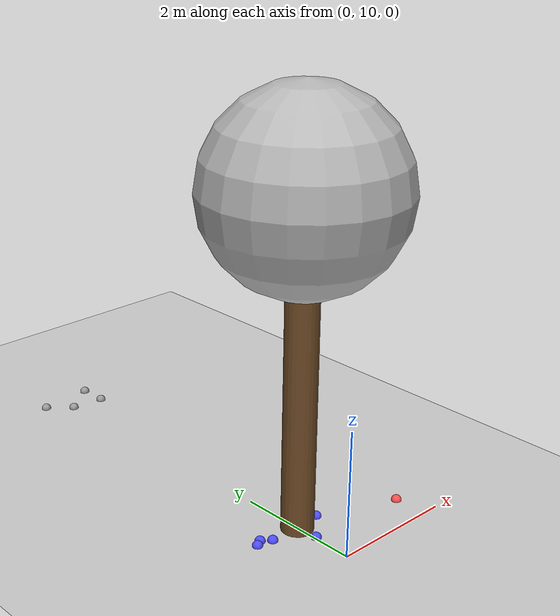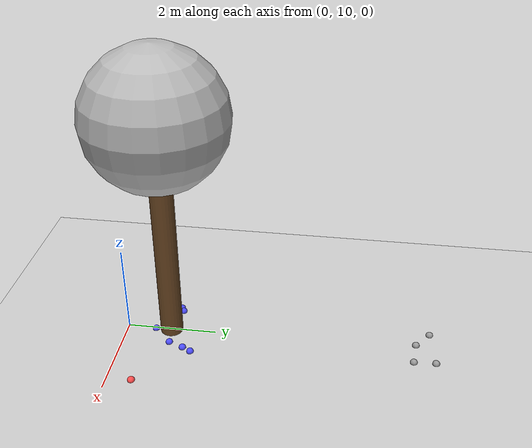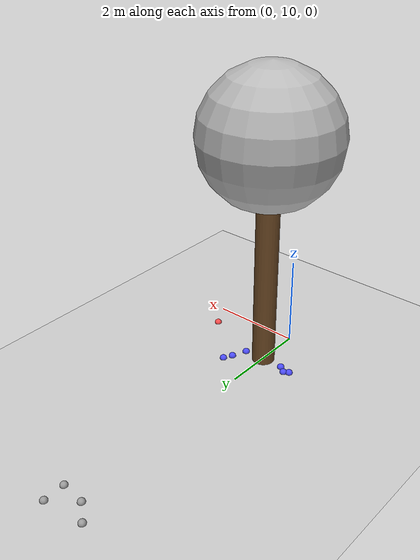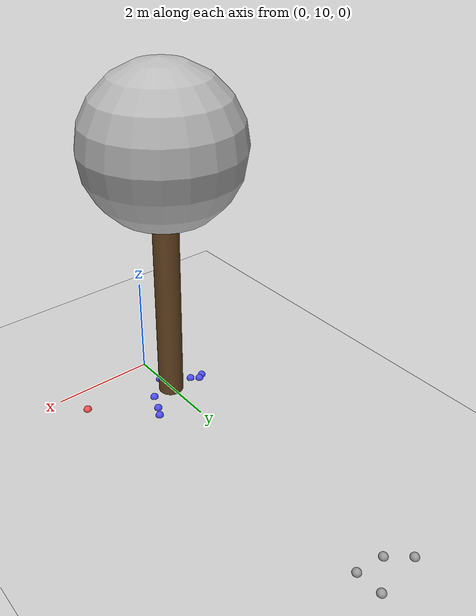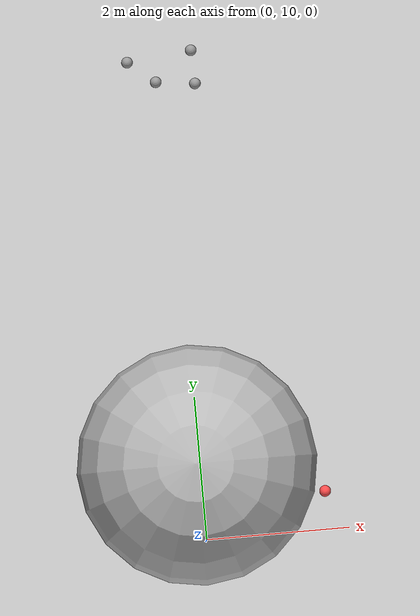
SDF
<sdf version="1.7">
 <world name="default">
  <model name="ground_plane">
   <static>1</static>
   <link name="link">
    <collision name="collision">
     <geometry><plane><normal>0 0 1</normal><size>100 100</size></plane></geometry>
     <surface>
      <contact><collide_bitmask>65535</collide_bitmask></contact>
      <friction><ode><mu>100</mu><mu2>50</mu2></ode></friction>
     </surface>
    </collision>
    <visual name="visual">
     <cast_shadows>0</cast_shadows>
     <geometry><plane><normal>0 0 1</normal><size>100 100</size></plane></geometry>
     <material>
      <script><uri>file://media/materials/scripts/gazebo.material</uri><name>Gazebo/Grey</name></script>
     </material>
    </visual>
   </link>
  </model>
  <model name="tree_simple_65">
   <static>1</static>
   <link name="link">
    <pose>0 0 0.1 0 -0 0</pose>
    <inertial>
     <mass>666</mass>
     <inertia>
      <ixx>0.0861167</ixx>
      <ixy>0</ixy>
      <ixz>0</ixz>
      <iyy>0.0861167</iyy>
      <iyz>0</iyz>
      <izz>0.0861167</izz>
     </inertia>
    </inertial>
    <collision name="collision_trunk">
     <pose>0 0 2 0 -0 0</pose>
     <geometry><cylinder><radius>0.25</radius><length>4</length></cylinder></geometry>
     <surface>
      <contact>
       <poissons_ratio>0.347</poissons_ratio>
       <elastic_modulus>8.8e+09</elastic_modulus>
       <ode><kp>100000</kp><kd>100</kd><max_vel>100</max_vel><min_depth>0.001</min_depth></ode>
      </contact>
      <friction>
       <torsional>
        <coefficient>1</coefficient>
        <use_patch_radius>0</use_patch_radius>
        <surface_radius>0.01</surface_radius>
       </torsional>
      </friction>
     </surface>
    </collision>
    <collision name="collision_treetop">
     <pose>0 0 5.2 0 -0 0</pose>
     <geometry><sphere><radius>1.5</radius></sphere></geometry>
     <surface>
      <contact>
       <poissons_ratio>0.347</poissons_ratio>
       <elastic_modulus>8.8e+09</elastic_modulus>
       <ode><kp>100000</kp><kd>100</kd><max_vel>100</max_vel><min_depth>0.001</min_depth></ode>
      </contact>
      <friction>
       <torsional>
        <coefficient>1</coefficient>
        <use_patch_radius>0</use_patch_radius>
        <surface_radius>0.01</surface_radius>
       </torsional>
      </friction>
     </surface>
    </collision>
    <visual name="trunk">
     <pose>0 0 2 0 -0 0</pose>
     <geometry><cylinder><radius>0.25</radius><length>4</length></cylinder></geometry>
     <material>
      <script>
       <uri>model://tree_simple/scripts</uri>
       <uri>model://tree_simple/materials/textures</uri>
       <name>TreeSimple/Trunk</name>
      </script>
     </material>
    </visual>
    <visual name="treetop">
     <pose>0 0 5.2 0 -0 0</pose>
     <geometry><sphere><radius>1.5</radius></sphere></geometry>
     <material>
      <script>
       <uri>model://tree_simple/scripts</uri>
       <uri>model://tree_simple/materials/textures</uri>
       <name>TreeSimple/Treetop</name>
      </script>
     </material>
    </visual>
   </link>
   <pose>0 11 -0.1 0 -0 0</pose>
  </model>
  <model name="seed_black_41">
   <link name="link">
    <inertial>
     <mass>1</mass>
     <inertia><ixx>0.1</ixx><ixy>0</ixy><ixz>0</ixz><iyy>0.1</iyy><iyz>0</iyz><izz>0.1</izz></inertia>
    </inertial>
    <visual name="visual">
     <geometry><sphere><radius>0.08</radius></sphere></geometry>
     <material>
      <script><name>Gazebo/Grey</name><uri>file://media/materials/scripts/gazebo.material</uri></script>
      <shader type="pixel"><normal_map>__default__</normal_map></shader>
      <ambient>0 0 0 1</ambient>
      <diffuse>0.7 0.7 0.7 1</diffuse>
      <specular>0.01 0.01 0.01 1</specular>
      <emissive>0 0 0 1</emissive>
     </material>
    </visual>
    <collision name="collision">
     <geometry><sphere><radius>0.0005</radius></sphere></geometry>
     <surface>
      <friction>
       <ode><mu>1</mu><mu2>1</mu2><fdir1>0 0 0</fdir1><slip1>0</slip1><slip2>0</slip2></ode>
       <torsional>
        <coefficient>1</coefficient>
        <patch_radius>0</patch_radius>
        <surface_radius>0</surface_radius>
        <use_patch_radius>1</use_patch_radius>
        <ode><slip>0</slip></ode>
       </torsional>
      </friction>
      <bounce><restitution_coefficient>0</restitution_coefficient><threshold>1e+06</threshold></bounce>
      <contact>
       <collide_without_contact>0</collide_without_contact>
       <collide_without_contact_bitmask>1</collide_without_contact_bitmask>
       <collide_bitmask>1</collide_bitmask>
       <ode>
        <soft_cfm>0</soft_cfm>
        <soft_erp>0.2</soft_erp>
        <kp>1e+13</kp>
        <kd>1</kd>
        <max_vel>0.01</max_vel>
        <min_depth>0</min_depth>
       </ode>
       <bullet>
        <split_impulse>1</split_impulse>
        <split_impulse_penetration_threshold>-0.01</split_impulse_penetration_threshold>
        <soft_cfm>0</soft_cfm>
        <soft_erp>0.2</soft_erp>
        <kp>1e+13</kp>
        <kd>1</kd>
       </bullet>
      </contact>
     </surface>
    </collision>
   </link>
   <static>0</static>
   <pose>-0.544174 16.7759 0.0005 0 -0 0</pose>
  </model>
  <model name="seed_black_43">
   <link name="link">
    <inertial>
     <mass>1</mass>
     <inertia><ixx>0.1</ixx><ixy>0</ixy><ixz>0</ixz><iyy>0.1</iyy><iyz>0</iyz><izz>0.1</izz></inertia>
    </inertial>
    <visual name="visual">
     <geometry><sphere><radius>0.08</radius></sphere></geometry>
     <material>
      <script><name>Gazebo/Grey</name><uri>file://media/materials/scripts/gazebo.material</uri></script>
      <shader type="pixel"><normal_map>__default__</normal_map></shader>
      <ambient>0 0 0 1</ambient>
      <diffuse>0.7 0.7 0.7 1</diffuse>
      <specular>0.01 0.01 0.01 1</specular>
      <emissive>0 0 0 1</emissive>
     </material>
    </visual>
    <collision name="collision">
     <geometry><sphere><radius>0.0005</radius></sphere></geometry>
     <surface>
      <friction>
       <ode><mu>1</mu><mu2>1</mu2><fdir1>0 0 0</fdir1><slip1>0</slip1><slip2>0</slip2></ode>
       <torsional>
        <coefficient>1</coefficient>
        <patch_radius>0</patch_radius>
        <surface_radius>0</surface_radius>
        <use_patch_radius>1</use_patch_radius>
        <ode><slip>0</slip></ode>
       </torsional>
      </friction>
      <bounce><restitution_coefficient>0</restitution_coefficient><threshold>1e+06</threshold></bounce>
      <contact>
       <collide_without_contact>0</collide_without_contact>
       <collide_without_contact_bitmask>1</collide_without_contact_bitmask>
       <collide_bitmask>1</collide_bitmask>
       <ode>
        <soft_cfm>0</soft_cfm>
        <soft_erp>0.2</soft_erp>
        <kp>1e+13</kp>
        <kd>1</kd>
        <max_vel>0.01</max_vel>
        <min_depth>0</min_depth>
       </ode>
       <bullet>
        <split_impulse>1</split_impulse>
        <split_impulse_penetration_threshold>-0.01</split_impulse_penetration_threshold>
        <soft_cfm>0</soft_cfm>
        <soft_erp>0.2</soft_erp>
        <kp>1e+13</kp>
        <kd>1</kd>
       </bullet>
      </contact>
     </surface>
    </collision>
   </link>
   <static>0</static>
   <pose>0.383185 16.4 0.0005 0 -0 0</pose>
  </model>
  <model name="seed_black_44">
   <link name="link">
    <inertial>
     <mass>1</mass>
     <inertia><ixx>0.1</ixx><ixy>0</ixy><ixz>0</ixz><iyy>0.1</iyy><iyz>0</iyz><izz>0.1</izz></inertia>
    </inertial>
    <visual name="visual">
     <geometry><sphere><radius>0.08</radius></sphere></geometry>
     <material>
      <script><name>Gazebo/Grey</name><uri>file://media/materials/scripts/gazebo.material</uri></script>
      <shader type="pixel"><normal_map>__default__</normal_map></shader>
      <ambient>0 0 0 1</ambient>
      <diffuse>0.7 0.7 0.7 1</diffuse>
      <specular>0.01 0.01 0.01 1</specular>
      <emissive>0 0 0 1</emissive>
     </material>
    </visual>
    <collision name="collision">
     <geometry><sphere><radius>0.0005</radius></sphere></geometry>
     <surface>
      <friction>
       <ode><mu>1</mu><mu2>1</mu2><fdir1>0 0 0</fdir1><slip1>0</slip1><slip2>0</slip2></ode>
       <torsional>
        <coefficient>1</coefficient>
        <patch_radius>0</patch_radius>
        <surface_radius>0</surface_radius>
        <use_patch_radius>1</use_patch_radius>
        <ode><slip>0</slip></ode>
       </torsional>
      </friction>
      <bounce><restitution_coefficient>0</restitution_coefficient><threshold>1e+06</threshold></bounce>
      <contact>
       <collide_without_contact>0</collide_without_contact>
       <collide_without_contact_bitmask>1</collide_without_contact_bitmask>
       <collide_bitmask>1</collide_bitmask>
       <ode>
        <soft_cfm>0</soft_cfm>
        <soft_erp>0.2</soft_erp>
        <kp>1e+13</kp>
        <kd>1</kd>
        <max_vel>0.01</max_vel>
        <min_depth>0</min_depth>
       </ode>
       <bullet>
        <split_impulse>1</split_impulse>
        <split_impulse_penetration_threshold>-0.01</split_impulse_penetration_threshold>
        <soft_cfm>0</soft_cfm>
        <soft_erp>0.2</soft_erp>
        <kp>1e+13</kp>
        <kd>1</kd>
       </bullet>
      </contact>
     </surface>
    </collision>
   </link>
   <static>0</static>
   <pose>0.364602 16.8736 0.0005 0 -0 0</pose>
  </model>
  <model name="seed_black_45">
   <link name="link">
    <inertial>
     <mass>1</mass>
     <inertia><ixx>0.1</ixx><ixy>0</ixy><ixz>0</ixz><iyy>0.1</iyy><iyz>0</iyz><izz>0.1</izz></inertia>
    </inertial>
    <visual name="visual">
     <geometry><sphere><radius>0.08</radius></sphere></geometry>
     <material>
      <script><name>Gazebo/Grey</name><uri>file://media/materials/scripts/gazebo.material</uri></script>
      <shader type="pixel"><normal_map>__default__</normal_map></shader>
      <ambient>0 0 0 1</ambient>
      <diffuse>0.7 0.7 0.7 1</diffuse>
      <specular>0.01 0.01 0.01 1</specular>
      <emissive>0 0 0 1</emissive>
     </material>
    </visual>
    <collision name="collision">
     <geometry><sphere><radius>0.0005</radius></sphere></geometry>
     <surface>
      <friction>
       <ode><mu>1</mu><mu2>1</mu2><fdir1>0 0 0</fdir1><slip1>0</slip1><slip2>0</slip2></ode>
       <torsional>
        <coefficient>1</coefficient>
        <patch_radius>0</patch_radius>
        <surface_radius>0</surface_radius>
        <use_patch_radius>1</use_patch_radius>
        <ode><slip>0</slip></ode>
       </torsional>
      </friction>
      <bounce><restitution_coefficient>0</restitution_coefficient><threshold>1e+06</threshold></bounce>
      <contact>
       <collide_without_contact>0</collide_without_contact>
       <collide_without_contact_bitmask>1</collide_without_contact_bitmask>
       <collide_bitmask>1</collide_bitmask>
       <ode>
        <soft_cfm>0</soft_cfm>
        <soft_erp>0.2</soft_erp>
        <kp>1e+13</kp>
        <kd>1</kd>
        <max_vel>0.01</max_vel>
        <min_depth>0</min_depth>
       </ode>
       <bullet>
        <split_impulse>1</split_impulse>
        <split_impulse_penetration_threshold>-0.01</split_impulse_penetration_threshold>
        <soft_cfm>0</soft_cfm>
        <soft_erp>0.2</soft_erp>
        <kp>1e+13</kp>
        <kd>1</kd>
       </bullet>
      </contact>
     </surface>
    </collision>
   </link>
   <static>0</static>
   <pose>-0.1655 16.4639 0.0005 0 -0 0</pose>
  </model>
  <model name="seed_blue_142">
   <link name="link">
    <inertial>
     <mass>1</mass>
     <inertia><ixx>0.1</ixx><ixy>0</ixy><ixz>0</ixz><iyy>0.1</iyy><iyz>0</iyz><izz>0.1</izz></inertia>
    </inertial>
    <visual name="visual">
     <geometry><sphere><radius>0.08</radius></sphere></geometry>
     <material>
      <script><name>Gazebo/Grey</name><uri>file://media/materials/scripts/gazebo.material</uri></script>
      <shader type="pixel"><normal_map>__default__</normal_map></shader>
      <ambient>0.3 0.3 1 1</ambient>
      <diffuse>0.7 0.7 0.7 1</diffuse>
      <specular>0.01 0.01 0.01 1</specular>
      <emissive>0 0 0 1</emissive>
     </material>
    </visual>
    <collision name="collision">
     <geometry><sphere><radius>0.0005</radius></sphere></geometry>
     <surface>
      <friction>
       <ode><mu>1</mu><mu2>1</mu2><fdir1>0 0 0</fdir1><slip1>0</slip1><slip2>0</slip2></ode>
       <torsional>
        <coefficient>1</coefficient>
        <patch_radius>0</patch_radius>
        <surface_radius>0</surface_radius>
        <use_patch_radius>1</use_patch_radius>
        <ode><slip>0</slip></ode>
       </torsional>
      </friction>
      <bounce><restitution_coefficient>0</restitution_coefficient><threshold>1e+06</threshold></bounce>
      <contact>
       <collide_without_contact>0</collide_without_contact>
       <collide_without_contact_bitmask>1</collide_without_contact_bitmask>
       <collide_bitmask>1</collide_bitmask>
       <ode>
        <soft_cfm>0</soft_cfm>
        <soft_erp>0.2</soft_erp>
        <kp>1e+13</kp>
        <kd>1</kd>
        <max_vel>0.01</max_vel>
        <min_depth>0</min_depth>
       </ode>
       <bullet>
        <split_impulse>1</split_impulse>
        <split_impulse_penetration_threshold>-0.01</split_impulse_penetration_threshold>
        <soft_cfm>0</soft_cfm>
        <soft_erp>0.2</soft_erp>
        <kp>1e+13</kp>
        <kd>1</kd>
       </bullet>
      </contact>
     </surface>
    </collision>
   </link>
   <static>0</static>
   <pose>0.447901 11.0425 0.0005 0 -0 0</pose>
  </model>
  <model name="seed_blue_143">
   <link name="link">
    <inertial>
     <mass>1</mass>
     <inertia><ixx>0.1</ixx><ixy>0</ixy><ixz>0</ixz><iyy>0.1</iyy><iyz>0</iyz><izz>0.1</izz></inertia>
    </inertial>
    <visual name="visual">
     <geometry><sphere><radius>0.08</radius></sphere></geometry>
     <material>
      <script><name>Gazebo/Grey</name><uri>file://media/materials/scripts/gazebo.material</uri></script>
      <shader type="pixel"><normal_map>__default__</normal_map></shader>
      <ambient>0.3 0.3 1 1</ambient>
      <diffuse>0.7 0.7 0.7 1</diffuse>
      <specular>0.01 0.01 0.01 1</specular>
      <emissive>0 0 0 1</emissive>
     </material>
    </visual>
    <collision name="collision">
     <geometry><sphere><radius>0.0005</radius></sphere></geometry>
     <surface>
      <friction>
       <ode><mu>1</mu><mu2>1</mu2><fdir1>0 0 0</fdir1><slip1>0</slip1><slip2>0</slip2></ode>
       <torsional>
        <coefficient>1</coefficient>
        <patch_radius>0</patch_radius>
        <surface_radius>0</surface_radius>
        <use_patch_radius>1</use_patch_radius>
        <ode><slip>0</slip></ode>
       </torsional>
      </friction>
      <bounce><restitution_coefficient>0</restitution_coefficient><threshold>1e+06</threshold></bounce>
      <contact>
       <collide_without_contact>0</collide_without_contact>
       <collide_without_contact_bitmask>1</collide_without_contact_bitmask>
       <collide_bitmask>1</collide_bitmask>
       <ode>
        <soft_cfm>0</soft_cfm>
        <soft_erp>0.2</soft_erp>
        <kp>1e+13</kp>
        <kd>1</kd>
        <max_vel>0.01</max_vel>
        <min_depth>0</min_depth>
       </ode>
       <bullet>
        <split_impulse>1</split_impulse>
        <split_impulse_penetration_threshold>-0.01</split_impulse_penetration_threshold>
        <soft_cfm>0</soft_cfm>
        <soft_erp>0.2</soft_erp>
        <kp>1e+13</kp>
        <kd>1</kd>
       </bullet>
      </contact>
     </surface>
    </collision>
   </link>
   <static>0</static>
   <pose>0.581471 11.3693 0.0005 0 -0 0</pose>
  </model>
  <model name="seed_blue_144">
   <link name="link">
    <inertial>
     <mass>1</mass>
     <inertia><ixx>0.1</ixx><ixy>0</ixy><ixz>0</ixz><iyy>0.1</iyy><iyz>0</iyz><izz>0.1</izz></inertia>
    </inertial>
    <visual name="visual">
     <geometry><sphere><radius>0.08</radius></sphere></geometry>
     <material>
      <script><name>Gazebo/Grey</name><uri>file://media/materials/scripts/gazebo.material</uri></script>
      <shader type="pixel"><normal_map>__default__</normal_map></shader>
      <ambient>0.3 0.3 1 1</ambient>
      <diffuse>0.7 0.7 0.7 1</diffuse>
      <specular>0.01 0.01 0.01 1</specular>
      <emissive>0 0 0 1</emissive>
     </material>
    </visual>
    <collision name="collision">
     <geometry><sphere><radius>0.0005</radius></sphere></geometry>
     <surface>
      <friction>
       <ode><mu>1</mu><mu2>1</mu2><fdir1>0 0 0</fdir1><slip1>0</slip1><slip2>0</slip2></ode>
       <torsional>
        <coefficient>1</coefficient>
        <patch_radius>0</patch_radius>
        <surface_radius>0</surface_radius>
        <use_patch_radius>1</use_patch_radius>
        <ode><slip>0</slip></ode>
       </torsional>
      </friction>
      <bounce><restitution_coefficient>0</restitution_coefficient><threshold>1e+06</threshold></bounce>
      <contact>
       <collide_without_contact>0</collide_without_contact>
       <collide_without_contact_bitmask>1</collide_without_contact_bitmask>
       <collide_bitmask>1</collide_bitmask>
       <ode>
        <soft_cfm>0</soft_cfm>
        <soft_erp>0.2</soft_erp>
        <kp>1e+13</kp>
        <kd>1</kd>
        <max_vel>0.01</max_vel>
        <min_depth>0</min_depth>
       </ode>
       <bullet>
        <split_impulse>1</split_impulse>
        <split_impulse_penetration_threshold>-0.01</split_impulse_penetration_threshold>
        <soft_cfm>0</soft_cfm>
        <soft_erp>0.2</soft_erp>
        <kp>1e+13</kp>
        <kd>1</kd>
       </bullet>
      </contact>
     </surface>
    </collision>
   </link>
   <static>0</static>
   <pose>-0.494558 11.0101 0.0005 0 -0 0</pose>
  </model>
  <model name="seed_blue_145">
   <link name="link">
    <inertial>
     <mass>1</mass>
     <inertia><ixx>0.1</ixx><ixy>0</ixy><ixz>0</ixz><iyy>0.1</iyy><iyz>0</iyz><izz>0.1</izz></inertia>
    </inertial>
    <visual name="visual">
     <geometry><sphere><radius>0.08</radius></sphere></geometry>
     <material>
      <script><name>Gazebo/Grey</name><uri>file://media/materials/scripts/gazebo.material</uri></script>
      <shader type="pixel"><normal_map>__default__</normal_map></shader>
      <ambient>0.3 0.3 1 1</ambient>
      <diffuse>0.7 0.7 0.7 1</diffuse>
      <specular>0.01 0.01 0.01 1</specular>
      <emissive>0 0 0 1</emissive>
     </material>
    </visual>
    <collision name="collision">
     <geometry><sphere><radius>0.0005</radius></sphere></geometry>
     <surface>
      <friction>
       <ode><mu>1</mu><mu2>1</mu2><fdir1>0 0 0</fdir1><slip1>0</slip1><slip2>0</slip2></ode>
       <torsional>
        <coefficient>1</coefficient>
        <patch_radius>0</patch_radius>
        <surface_radius>0</surface_radius>
        <use_patch_radius>1</use_patch_radius>
        <ode><slip>0</slip></ode>
       </torsional>
      </friction>
      <bounce><restitution_coefficient>0</restitution_coefficient><threshold>1e+06</threshold></bounce>
      <contact>
       <collide_without_contact>0</collide_without_contact>
       <collide_without_contact_bitmask>1</collide_without_contact_bitmask>
       <collide_bitmask>1</collide_bitmask>
       <ode>
        <soft_cfm>0</soft_cfm>
        <soft_erp>0.2</soft_erp>
        <kp>1e+13</kp>
        <kd>1</kd>
        <max_vel>0.01</max_vel>
        <min_depth>0</min_depth>
       </ode>
       <bullet>
        <split_impulse>1</split_impulse>
        <split_impulse_penetration_threshold>-0.01</split_impulse_penetration_threshold>
        <soft_cfm>0</soft_cfm>
        <soft_erp>0.2</soft_erp>
        <kp>1e+13</kp>
        <kd>1</kd>
       </bullet>
      </contact>
     </surface>
    </collision>
   </link>
   <static>0</static>
   <pose>-0.644623 11.1218 0.0005 0 -0 0</pose>
  </model>
  <model name="seed_blue_146">
   <link name="link">
    <inertial>
     <mass>1</mass>
     <inertia><ixx>0.1</ixx><ixy>0</ixy><ixz>0</ixz><iyy>0.1</iyy><iyz>0</iyz><izz>0.1</izz></inertia>
    </inertial>
    <visual name="visual">
     <geometry><sphere><radius>0.08</radius></sphere></geometry>
     <material>
      <script><name>Gazebo/Grey</name><uri>file://media/materials/scripts/gazebo.material</uri></script>
      <shader type="pixel"><normal_map>__default__</normal_map></shader>
      <ambient>0.3 0.3 1 1</ambient>
      <diffuse>0.7 0.7 0.7 1</diffuse>
      <specular>0.01 0.01 0.01 1</specular>
      <emissive>0 0 0 1</emissive>
     </material>
    </visual>
    <collision name="collision">
     <geometry><sphere><radius>0.0005</radius></sphere></geometry>
     <surface>
      <friction>
       <ode><mu>1</mu><mu2>1</mu2><fdir1>0 0 0</fdir1><slip1>0</slip1><slip2>0</slip2></ode>
       <torsional>
        <coefficient>1</coefficient>
        <patch_radius>0</patch_radius>
        <surface_radius>0</surface_radius>
        <use_patch_radius>1</use_patch_radius>
        <ode><slip>0</slip></ode>
       </torsional>
      </friction>
      <bounce><restitution_coefficient>0</restitution_coefficient><threshold>1e+06</threshold></bounce>
      <contact>
       <collide_without_contact>0</collide_without_contact>
       <collide_without_contact_bitmask>1</collide_without_contact_bitmask>
       <collide_bitmask>1</collide_bitmask>
       <ode>
        <soft_cfm>0</soft_cfm>
        <soft_erp>0.2</soft_erp>
        <kp>1e+13</kp>
        <kd>1</kd>
        <max_vel>0.01</max_vel>
        <min_depth>0</min_depth>
       </ode>
       <bullet>
        <split_impulse>1</split_impulse>
        <split_impulse_penetration_threshold>-0.01</split_impulse_penetration_threshold>
        <soft_cfm>0</soft_cfm>
        <soft_erp>0.2</soft_erp>
        <kp>1e+13</kp>
        <kd>1</kd>
       </bullet>
      </contact>
     </surface>
    </collision>
   </link>
   <static>0</static>
   <pose>0.033481 10.6411 0.0005 0 -0 0</pose>
  </model>
  <model name="seed_blue_147">
   <link name="link">
    <inertial>
     <mass>1</mass>
     <inertia><ixx>0.1</ixx><ixy>0</ixy><ixz>0</ixz><iyy>0.1</iyy><iyz>0</iyz><izz>0.1</izz></inertia>
    </inertial>
    <visual name="visual">
     <geometry><sphere><radius>0.08</radius></sphere></geometry>
     <material>
      <script><name>Gazebo/Grey</name><uri>file://media/materials/scripts/gazebo.material</uri></script>
      <shader type="pixel"><normal_map>__default__</normal_map></shader>
      <ambient>0.3 0.3 1 1</ambient>
      <diffuse>0.7 0.7 0.7 1</diffuse>
      <specular>0.01 0.01 0.01 1</specular>
      <emissive>0 0 0 1</emissive>
     </material>
    </visual>
    <collision name="collision">
     <geometry><sphere><radius>0.0005</radius></sphere></geometry>
     <surface>
      <friction>
       <ode><mu>1</mu><mu2>1</mu2><fdir1>0 0 0</fdir1><slip1>0</slip1><slip2>0</slip2></ode>
       <torsional>
        <coefficient>1</coefficient>
        <patch_radius>0</patch_radius>
        <surface_radius>0</surface_radius>
        <use_patch_radius>1</use_patch_radius>
        <ode><slip>0</slip></ode>
       </torsional>
      </friction>
      <bounce><restitution_coefficient>0</restitution_coefficient><threshold>1e+06</threshold></bounce>
      <contact>
       <collide_without_contact>0</collide_without_contact>
       <collide_without_contact_bitmask>1</collide_without_contact_bitmask>
       <collide_bitmask>1</collide_bitmask>
       <ode>
        <soft_cfm>0</soft_cfm>
        <soft_erp>0.2</soft_erp>
        <kp>1e+13</kp>
        <kd>1</kd>
        <max_vel>0.01</max_vel>
        <min_depth>0</min_depth>
       </ode>
       <bullet>
        <split_impulse>1</split_impulse>
        <split_impulse_penetration_threshold>-0.01</split_impulse_penetration_threshold>
        <soft_cfm>0</soft_cfm>
        <soft_erp>0.2</soft_erp>
        <kp>1e+13</kp>
        <kd>1</kd>
       </bullet>
      </contact>
     </surface>
    </collision>
   </link>
   <static>0</static>
   <pose>-0.752501 11.0604 0.0005 0 -0 0</pose>
  </model>
  <model name="seed_blue_148">
   <link name="link">
    <inertial>
     <mass>1</mass>
     <inertia><ixx>0.1</ixx><ixy>0</ixy><ixz>0</ixz><iyy>0.1</iyy><iyz>0</iyz><izz>0.1</izz></inertia>
    </inertial>
    <visual name="visual">
     <geometry><sphere><radius>0.08</radius></sphere></geometry>
     <material>
      <script><name>Gazebo/Grey</name><uri>file://media/materials/scripts/gazebo.material</uri></script>
      <shader type="pixel"><normal_map>__default__</normal_map></shader>
      <ambient>0.3 0.3 1 1</ambient>
      <diffuse>0.7 0.7 0.7 1</diffuse>
      <specular>0.01 0.01 0.01 1</specular>
      <emissive>0 0 0 1</emissive>
     </material>
    </visual>
    <collision name="collision">
     <geometry><sphere><radius>0.0005</radius></sphere></geometry>
     <surface>
      <friction>
       <ode><mu>1</mu><mu2>1</mu2><fdir1>0 0 0</fdir1><slip1>0</slip1><slip2>0</slip2></ode>
       <torsional>
        <coefficient>1</coefficient>
        <patch_radius>0</patch_radius>
        <surface_radius>0</surface_radius>
        <use_patch_radius>1</use_patch_radius>
        <ode><slip>0</slip></ode>
       </torsional>
      </friction>
      <bounce><restitution_coefficient>0</restitution_coefficient><threshold>1e+06</threshold></bounce>
      <contact>
       <collide_without_contact>0</collide_without_contact>
       <collide_without_contact_bitmask>1</collide_without_contact_bitmask>
       <collide_bitmask>1</collide_bitmask>
       <ode>
        <soft_cfm>0</soft_cfm>
        <soft_erp>0.2</soft_erp>
        <kp>1e+13</kp>
        <kd>1</kd>
        <max_vel>0.01</max_vel>
        <min_depth>0</min_depth>
       </ode>
       <bullet>
        <split_impulse>1</split_impulse>
        <split_impulse_penetration_threshold>-0.01</split_impulse_penetration_threshold>
        <soft_cfm>0</soft_cfm>
        <soft_erp>0.2</soft_erp>
        <kp>1e+13</kp>
        <kd>1</kd>
       </bullet>
      </contact>
     </surface>
    </collision>
   </link>
   <static>0</static>
   <pose>0.683435 11.5635 0.0005 0 -0 0</pose>
  </model>
  <model name="seed_red_295">
   <link name="link">
    <inertial>
     <mass>1</mass>
     <inertia><ixx>0.1</ixx><ixy>0</ixy><ixz>0</ixz><iyy>0.1</iyy><iyz>0</iyz><izz>0.1</izz></inertia>
    </inertial>
    <visual name="visual">
     <geometry><sphere><radius>0.08</radius></sphere></geometry>
     <material>
      <script><name>Gazebo/Grey</name><uri>file://media/materials/scripts/gazebo.material</uri></script>
      <shader type="pixel"><normal_map>__default__</normal_map></shader>
      <ambient>1 0.3 0.3 1</ambient>
      <diffuse>0.7 0.7 0.7 1</diffuse>
      <specular>0.01 0.01 0.01 1</specular>
      <emissive>0 0 0 1</emissive>
     </material>
    </visual>
    <collision name="collision">
     <geometry><sphere><radius>0.0005</radius></sphere></geometry>
     <surface>
      <friction>
       <ode><mu>1</mu><mu2>1</mu2><fdir1>0 0 0</fdir1><slip1>0</slip1><slip2>0</slip2></ode>
       <torsional>
        <coefficient>1</coefficient>
        <patch_radius>0</patch_radius>
        <surface_radius>0</surface_radius>
        <use_patch_radius>1</use_patch_radius>
        <ode><slip>0</slip></ode>
       </torsional>
      </friction>
      <bounce><restitution_coefficient>0</restitution_coefficient><threshold>1e+06</threshold></bounce>
      <contact>
       <collide_without_contact>0</collide_without_contact>
       <collide_without_contact_bitmask>1</collide_without_contact_bitmask>
       <collide_bitmask>1</collide_bitmask>
       <ode>
        <soft_cfm>0</soft_cfm>
        <soft_erp>0.2</soft_erp>
        <kp>1e+13</kp>
        <kd>1</kd>
        <max_vel>0.01</max_vel>
        <min_depth>0</min_depth>
       </ode>
       <bullet>
        <split_impulse>1</split_impulse>
        <split_impulse_penetration_threshold>-0.01</split_impulse_penetration_threshold>
        <soft_cfm>0</soft_cfm>
        <soft_erp>0.2</soft_erp>
        <kp>1e+13</kp>
        <kd>1</kd>
       </bullet>
      </contact>
     </surface>
    </collision>
   </link>
   <static>0</static>
   <pose>1.70537 10.5367 0.0005 0 -0 0</pose>
  </model>
 </world>
</sdf>
